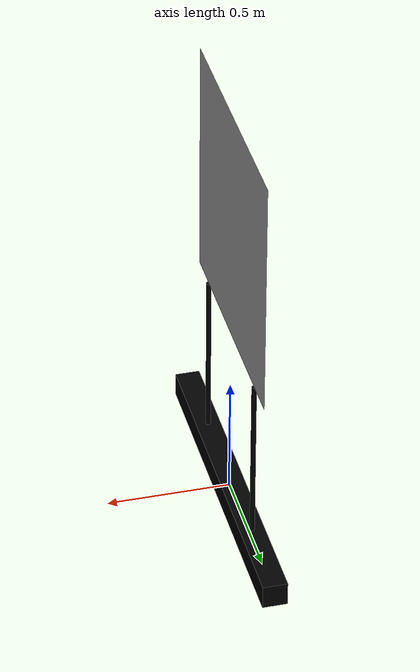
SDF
<?xml version="1.0" ?>
<sdf version="1.9">
    <model name="buoy1">
        <static>true</static>
        <link name="link">
            <visual name="buoy1_visual">
                <geometry>
                    <mesh>
                        <uri>buoy1.dae</uri>
                    </mesh>
                </geometry>
            </visual>
            <collision name="buoy1_collision">
                <geometry>
                    <mesh>
                        <uri>buoy1.dae</uri>
                    </mesh>
                </geometry>
            </collision>
        </link>
    </model>
</sdf>
